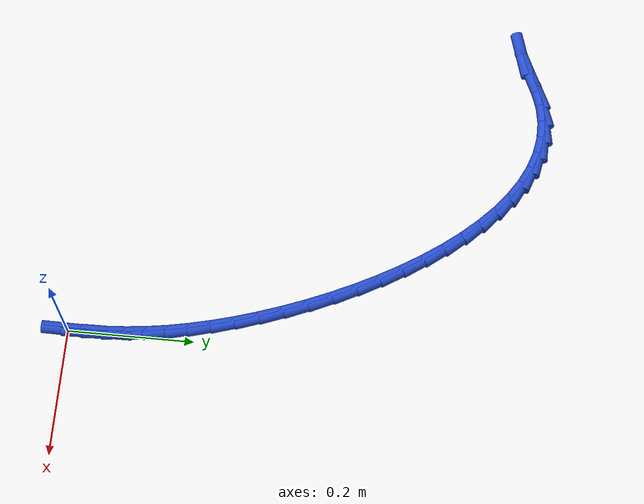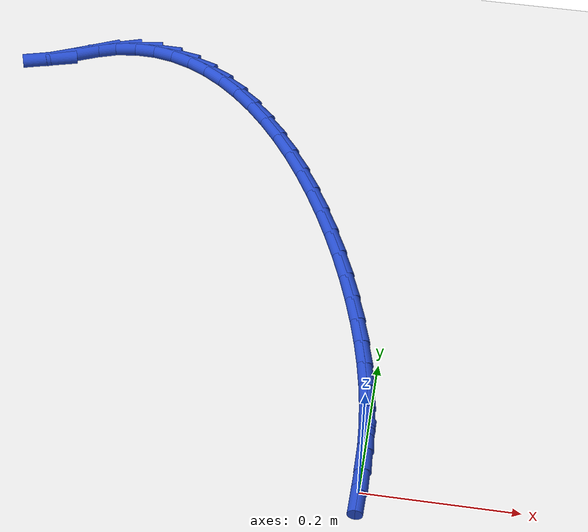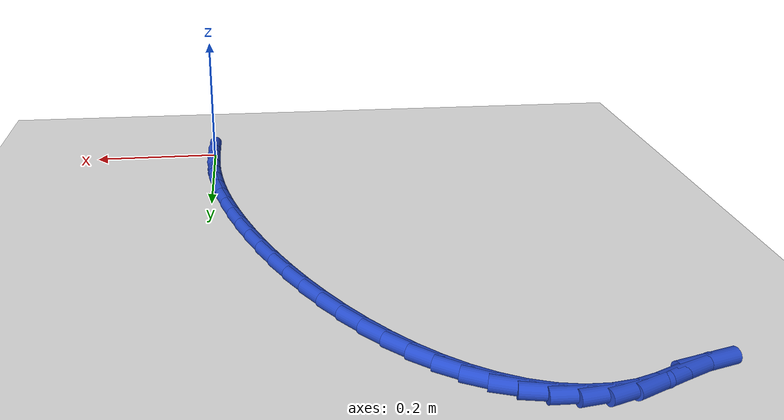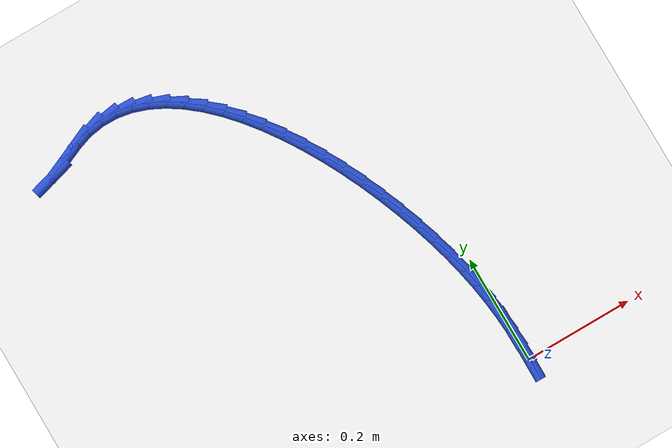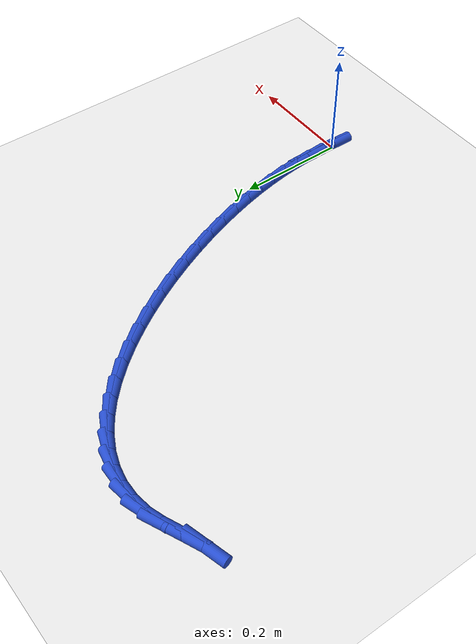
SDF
<sdf version="1.6">
 <world name="default">
  <model name="ground_plane">
   <static>1</static>
   <link name="link">
    <collision name="collision">
     <geometry><plane><normal>0 0 1</normal><size>100 100</size></plane></geometry>
     <surface><friction><ode><mu>100</mu><mu2>50</mu2></ode></friction></surface>
    </collision>
    <visual name="visual">
     <cast_shadows>0</cast_shadows>
     <geometry><plane><normal>0 0 1</normal><size>100 100</size></plane></geometry>
     <material>
      <script><uri>file://media/materials/scripts/gazebo.material</uri><name>Gazebo/WhiteGlow</name></script>
     </material>
    </visual>
   </link>
  </model>
  <model name="line">
   <link name="link_0">
    <pose>0.0 7.632783294297951e-17 0.01 0 1.57 1.5602410785087302</pose>
    <collision name="collision">
     <geometry><cylinder><radius>0.01</radius><length>0.08</length></cylinder></geometry>
    </collision>
    <visual name="visual">
     <material>
      <script><name>Gazebo/Blue</name><uri>file://media/materials/scripts/gazebo.material</uri></script>
     </material>
     <geometry><cylinder><radius>0.01</radius><length>0.08</length></cylinder></geometry>
    </visual>
   </link>
   <link name="link_1">
    <pose>0.0003309990488578508 0.031357552871455974 0.01 0 1.57 -1.5428414407994777</pose>
    <collision name="collision">
     <geometry><cylinder><radius>0.01</radius><length>0.08</length></cylinder></geometry>
    </collision>
    <visual name="visual">
     <material>
      <script><name>Gazebo/Blue</name><uri>file://media/materials/scripts/gazebo.material</uri></script>
     </material>
     <geometry><cylinder><radius>0.01</radius><length>0.08</length></cylinder></geometry>
    </visual>
   </link>
   <link name="link_2">
    <pose>-0.0005450256816263664 0.06268647767572658 0.01 0 1.57 -1.5022833746286473</pose>
    <collision name="collision">
     <geometry><cylinder><radius>0.01</radius><length>0.08</length></cylinder></geometry>
    </collision>
    <visual name="visual">
     <material>
      <script><name>Gazebo/Blue</name><uri>file://media/materials/scripts/gazebo.material</uri></script>
     </material>
     <geometry><cylinder><radius>0.01</radius><length>0.08</length></cylinder></geometry>
    </visual>
   </link>
   <link name="link_3">
    <pose>-0.00270702243128811 0.09419311693658512 0.01 0 1.57 -1.4606500215840132</pose>
    <collision name="collision">
     <geometry><cylinder><radius>0.01</radius><length>0.08</length></cylinder></geometry>
    </collision>
    <visual name="visual">
     <material>
      <script><name>Gazebo/Blue</name><uri>file://media/materials/scripts/gazebo.material</uri></script>
     </material>
     <geometry><cylinder><radius>0.01</radius><length>0.08</length></cylinder></geometry>
    </visual>
   </link>
   <link name="link_4">
    <pose>-0.006233939439962836 0.12608381317780482 0.01 0 1.57 -1.4189382596962705</pose>
    <collision name="collision">
     <geometry><cylinder><radius>0.01</radius><length>0.08</length></cylinder></geometry>
    </collision>
    <visual name="visual">
     <material>
      <script><name>Gazebo/Blue</name><uri>file://media/materials/scripts/gazebo.material</uri></script>
     </material>
     <geometry><cylinder><radius>0.01</radius><length>0.08</length></cylinder></geometry>
    </visual>
   </link>
   <link name="link_5">
    <pose>-0.011204724947485999 0.1585649089231589 0.01 0 1.57 -1.3780849845815055</pose>
    <collision name="collision">
     <geometry><cylinder><radius>0.01</radius><length>0.08</length></cylinder></geometry>
    </collision>
    <visual name="visual">
     <material>
      <script><name>Gazebo/Blue</name><uri>file://media/materials/scripts/gazebo.material</uri></script>
     </material>
     <geometry><cylinder><radius>0.01</radius><length>0.08</length></cylinder></geometry>
    </visual>
   </link>
   <link name="link_6">
    <pose>-0.01769832719369307 0.19184274669642065 0.01 0 1.57 -1.3388968363359433</pose>
    <collision name="collision">
     <geometry><cylinder><radius>0.01</radius><length>0.08</length></cylinder></geometry>
    </collision>
    <visual name="visual">
     <material>
      <script><name>Gazebo/Blue</name><uri>file://media/materials/scripts/gazebo.material</uri></script>
     </material>
     <geometry><cylinder><radius>0.01</radius><length>0.08</length></cylinder></geometry>
    </visual>
   </link>
   <link name="link_7">
    <pose>-0.025793694418419492 0.22612366902136324 0.01 0 1.57 -1.3019834450015169</pose>
    <collision name="collision">
     <geometry><cylinder><radius>0.01</radius><length>0.08</length></cylinder></geometry>
    </collision>
    <visual name="visual">
     <material>
      <script><name>Gazebo/Blue</name><uri>file://media/materials/scripts/gazebo.material</uri></script>
     </material>
     <geometry><cylinder><radius>0.01</radius><length>0.08</length></cylinder></geometry>
    </visual>
   </link>
   <link name="link_8">
    <pose>-0.035554027074187616 0.26155388031296817 0.01 0 1.57 -1.2671677220886497</pose>
    <collision name="collision">
     <geometry><cylinder><radius>0.01</radius><length>0.08</length></cylinder></geometry>
    </collision>
    <visual name="visual">
     <material>
      <script><name>Gazebo/Blue</name><uri>file://media/materials/scripts/gazebo.material</uri></script>
     </material>
     <geometry><cylinder><radius>0.01</radius><length>0.08</length></cylinder></geometry>
    </visual>
   </link>
   <link name="link_9">
    <pose>-0.04694953542879025 0.29792447136075006 0.01 0 1.57 -1.2334802067420967</pose>
    <collision name="collision">
     <geometry><cylinder><radius>0.01</radius><length>0.08</length></cylinder></geometry>
    </collision>
    <visual name="visual">
     <material>
      <script><name>Gazebo/Blue</name><uri>file://media/materials/scripts/gazebo.material</uri></script>
     </material>
     <geometry><cylinder><radius>0.01</radius><length>0.08</length></cylinder></geometry>
    </visual>
   </link>
   <link name="link_10">
    <pose>-0.05991641804499858 0.33489664806461306 0.01 0 1.57 -1.2000400107824165</pose>
    <collision name="collision">
     <geometry><cylinder><radius>0.01</radius><length>0.08</length></cylinder></geometry>
    </collision>
    <visual name="visual">
     <material>
      <script><name>Gazebo/Blue</name><uri>file://media/materials/scripts/gazebo.material</uri></script>
     </material>
     <geometry><cylinder><radius>0.01</radius><length>0.08</length></cylinder></geometry>
    </visual>
   </link>
   <link name="link_11">
    <pose>-0.07439082285938078 0.372131422991642 0.01 0 1.57 -1.1660625085651972</pose>
    <collision name="collision">
     <geometry><cylinder><radius>0.01</radius><length>0.08</length></cylinder></geometry>
    </collision>
    <visual name="visual">
     <material>
      <script><name>Gazebo/Blue</name><uri>file://media/materials/scripts/gazebo.material</uri></script>
     </material>
     <geometry><cylinder><radius>0.01</radius><length>0.08</length></cylinder></geometry>
    </visual>
   </link>
   <link name="link_12">
    <pose>-0.09030889780850501 0.4092898087089221 0.01 0 1.57 -1.1307963304815274</pose>
    <collision name="collision">
     <geometry><cylinder><radius>0.01</radius><length>0.08</length></cylinder></geometry>
    </collision>
    <visual name="visual">
     <material>
      <script><name>Gazebo/Blue</name><uri>file://media/materials/scripts/gazebo.material</uri></script>
     </material>
     <geometry><cylinder><radius>0.01</radius><length>0.08</length></cylinder></geometry>
    </visual>
   </link>
   <link name="link_13">
    <pose>-0.10760679082893934 0.44603281778353854 0.01 0 1.57 -1.0934719313543426</pose>
    <collision name="collision">
     <geometry><cylinder><radius>0.01</radius><length>0.08</length></cylinder></geometry>
    </collision>
    <visual name="visual">
     <material>
      <script><name>Gazebo/Blue</name><uri>file://media/materials/scripts/gazebo.material</uri></script>
     </material>
     <geometry><cylinder><radius>0.01</radius><length>0.08</length></cylinder></geometry>
    </visual>
   </link>
   <link name="link_14">
    <pose>-0.12622064985725204 0.4820214627825767 0.01 0 1.57 -1.053254516101011</pose>
    <collision name="collision">
     <geometry><cylinder><radius>0.01</radius><length>0.08</length></cylinder></geometry>
    </collision>
    <visual name="visual">
     <material>
      <script><name>Gazebo/Blue</name><uri>file://media/materials/scripts/gazebo.material</uri></script>
     </material>
     <geometry><cylinder><radius>0.01</radius><length>0.08</length></cylinder></geometry>
    </visual>
   </link>
   <link name="link_15">
    <pose>-0.14608662283001117 0.5169167562731214 0.01 0 1.57 -1.009196533418702</pose>
    <collision name="collision">
     <geometry><cylinder><radius>0.01</radius><length>0.08</length></cylinder></geometry>
    </collision>
    <visual name="visual">
     <material>
      <script><name>Gazebo/Blue</name><uri>file://media/materials/scripts/gazebo.material</uri></script>
     </material>
     <geometry><cylinder><radius>0.01</radius><length>0.08</length></cylinder></geometry>
    </visual>
   </link>
   <link name="link_16">
    <pose>-0.16714085768378495 0.5503797108222581 0.01 0 1.57 -0.9601867418515324</pose>
    <collision name="collision">
     <geometry><cylinder><radius>0.01</radius><length>0.08</length></cylinder></geometry>
    </collision>
    <visual name="visual">
     <material>
      <script><name>Gazebo/Blue</name><uri>file://media/materials/scripts/gazebo.material</uri></script>
     </material>
     <geometry><cylinder><radius>0.01</radius><length>0.08</length></cylinder></geometry>
    </visual>
   </link>
   <link name="link_17">
    <pose>-0.18931950235514144 0.582071338997072 0.01 0 1.57 -0.9048952084887715</pose>
    <collision name="collision">
     <geometry><cylinder><radius>0.01</radius><length>0.08</length></cylinder></geometry>
    </collision>
    <visual name="visual">
     <material>
      <script><name>Gazebo/Blue</name><uri>file://media/materials/scripts/gazebo.material</uri></script>
     </material>
     <geometry><cylinder><radius>0.01</radius><length>0.08</length></cylinder></geometry>
    </visual>
   </link>
   <link name="link_18">
    <pose>-0.21255870478064887 0.6116526533646479 0.01 0 1.57 -0.8417181817801344</pose>
    <collision name="collision">
     <geometry><cylinder><radius>0.01</radius><length>0.08</length></cylinder></geometry>
    </collision>
    <visual name="visual">
     <material>
      <script><name>Gazebo/Blue</name><uri>file://media/materials/scripts/gazebo.material</uri></script>
     </material>
     <geometry><cylinder><radius>0.01</radius><length>0.08</length></cylinder></geometry>
    </visual>
   </link>
   <link name="link_19">
    <pose>-0.23679461289687537 0.6387846664920713 0.01 0 1.57 -0.7687364886461396</pose>
    <collision name="collision">
     <geometry><cylinder><radius>0.01</radius><length>0.08</length></cylinder></geometry>
    </collision>
    <visual name="visual">
     <material>
      <script><name>Gazebo/Blue</name><uri>file://media/materials/scripts/gazebo.material</uri></script>
     </material>
     <geometry><cylinder><radius>0.01</radius><length>0.08</length></cylinder></geometry>
    </visual>
   </link>
   <link name="link_20">
    <pose>-0.26196337464038905 0.6631283909464273 0.01 0 1.57 -0.6837206920881425</pose>
    <collision name="collision">
     <geometry><cylinder><radius>0.01</radius><length>0.08</length></cylinder></geometry>
    </collision>
    <visual name="visual">
     <material>
      <script><name>Gazebo/Blue</name><uri>file://media/materials/scripts/gazebo.material</uri></script>
     </material>
     <geometry><cylinder><radius>0.01</radius><length>0.08</length></cylinder></geometry>
    </visual>
   </link>
   <link name="link_21">
    <pose>-0.2880011379477582 0.6843448392948013 0.01 0 1.57 -0.584251224668055</pose>
    <collision name="collision">
     <geometry><cylinder><radius>0.01</radius><length>0.08</length></cylinder></geometry>
    </collision>
    <visual name="visual">
     <material>
      <script><name>Gazebo/Blue</name><uri>file://media/materials/scripts/gazebo.material</uri></script>
     </material>
     <geometry><cylinder><radius>0.01</radius><length>0.08</length></cylinder></geometry>
    </visual>
   </link>
   <link name="link_22">
    <pose>-0.3148440507555509 0.702095024104278 0.01 0 1.57 -0.46807013256029634</pose>
    <collision name="collision">
     <geometry><cylinder><radius>0.01</radius><length>0.08</length></cylinder></geometry>
    </collision>
    <visual name="visual">
     <material>
      <script><name>Gazebo/Blue</name><uri>file://media/materials/scripts/gazebo.material</uri></script>
     </material>
     <geometry><cylinder><radius>0.01</radius><length>0.08</length></cylinder></geometry>
    </visual>
   </link>
   <link name="link_23">
    <pose>-0.3424282610003351 0.716039957941943 0.01 0 1.57 -0.33380709018294313</pose>
    <collision name="collision">
     <geometry><cylinder><radius>0.01</radius><length>0.08</length></cylinder></geometry>
    </collision>
    <visual name="visual">
     <material>
      <script><name>Gazebo/Blue</name><uri>file://media/materials/scripts/gazebo.material</uri></script>
     </material>
     <geometry><cylinder><radius>0.01</radius><length>0.08</length></cylinder></geometry>
    </visual>
   </link>
   <link name="link_24">
    <pose>-0.3706899166186793 0.7258406533748811 0.01 0 1.57 -0.1821128685247869</pose>
    <collision name="collision">
     <geometry><cylinder><radius>0.01</radius><length>0.08</length></cylinder></geometry>
    </collision>
    <visual name="visual">
     <material>
      <script><name>Gazebo/Blue</name><uri>file://media/materials/scripts/gazebo.material</uri></script>
     </material>
     <geometry><cylinder><radius>0.01</radius><length>0.08</length></cylinder></geometry>
    </visual>
   </link>
   <link name="link_25">
    <pose>-0.3995651655471514 0.7311581229701778 0.01 0 1.57 -0.016829557566478415</pose>
    <collision name="collision">
     <geometry><cylinder><radius>0.01</radius><length>0.08</length></cylinder></geometry>
    </collision>
    <visual name="visual">
     <material>
      <script><name>Gazebo/Blue</name><uri>file://media/materials/scripts/gazebo.material</uri></script>
     </material>
     <geometry><cylinder><radius>0.01</radius><length>0.08</length></cylinder></geometry>
    </visual>
   </link>
   <link name="link_26">
    <pose>-0.4289901557223196 0.731653379294918 0.01 0 1.57 0.15474770349344974</pose>
    <collision name="collision">
     <geometry><cylinder><radius>0.01</radius><length>0.08</length></cylinder></geometry>
    </collision>
    <visual name="visual">
     <material>
      <script><name>Gazebo/Blue</name><uri>file://media/materials/scripts/gazebo.material</uri></script>
     </material>
     <geometry><cylinder><radius>0.01</radius><length>0.08</length></cylinder></geometry>
    </visual>
   </link>
   <link name="link_27">
    <pose>-0.4589010350807521 0.7269874349161871 0.01 0 1.57 0.3215064868909488</pose>
    <collision name="collision">
     <geometry><cylinder><radius>0.01</radius><length>0.08</length></cylinder></geometry>
    </collision>
    <visual name="visual">
     <material>
      <script><name>Gazebo/Blue</name><uri>file://media/materials/scripts/gazebo.material</uri></script>
     </material>
     <geometry><cylinder><radius>0.01</radius><length>0.08</length></cylinder></geometry>
    </visual>
   </link>
   <link name="link_28">
    <pose>-0.489231217882669 0.7168855984377859 0.01 0 1.57 0.4230516009280961</pose>
    <collision name="collision">
     <geometry><cylinder><radius>0.01</radius><length>0.08</length></cylinder></geometry>
    </collision>
    <visual name="visual">
     <material>
      <script><name>Gazebo/Blue</name><uri>file://media/materials/scripts/gazebo.material</uri></script>
     </material>
     <geometry><cylinder><radius>0.01</radius><length>0.08</length></cylinder></geometry>
    </visual>
   </link>
   <link name="link_29">
    <pose>-0.519827519245681 0.7031099893159112 0.01 0 1.57 0.40942129871275734</pose>
    <collision name="collision">
     <geometry><cylinder><radius>0.01</radius><length>0.08</length></cylinder></geometry>
    </collision>
    <visual name="visual">
     <material>
      <script><name>Gazebo/Blue</name><uri>file://media/materials/scripts/gazebo.material</uri></script>
     </material>
     <geometry><cylinder><radius>0.01</radius><length>0.08</length></cylinder></geometry>
    </visual>
   </link>
   <link name="link_30">
    <pose>-0.5504344763212026 0.6898283036121865 0.01 0 1.57 0.27244731959582164</pose>
    <collision name="collision">
     <geometry><cylinder><radius>0.01</radius><length>0.08</length></cylinder></geometry>
    </collision>
    <visual name="visual">
     <material>
      <script><name>Gazebo/Blue</name><uri>file://media/materials/scripts/gazebo.material</uri></script>
     </material>
     <geometry><cylinder><radius>0.01</radius><length>0.08</length></cylinder></geometry>
    </visual>
   </link>
   <link name="link_270">
    <pose>-1.214306433183765e-17 6.938893903907228e-18 0.01 0 1.57 1.5605309056339107</pose>
    <collision name="collision">
     <geometry><cylinder><radius>0.01</radius><length>0.08</length></cylinder></geometry>
    </collision>
    <visual name="visual">
     <material>
      <script><name>Gazebo/Blue</name><uri>file://media/materials/scripts/gazebo.material</uri></script>
     </material>
     <geometry><cylinder><radius>0.01</radius><length>0.08</length></cylinder></geometry>
    </visual>
   </link>
   <link name="link_271">
    <pose>0.00032157141737494156 0.03132459123125543 0.01 0 1.57 -1.5405138543985315</pose>
    <collision name="collision">
     <geometry><cylinder><radius>0.01</radius><length>0.08</length></cylinder></geometry>
    </collision>
    <visual name="visual">
     <material>
      <script><name>Gazebo/Blue</name><uri>file://media/materials/scripts/gazebo.material</uri></script>
     </material>
     <geometry><cylinder><radius>0.01</radius><length>0.08</length></cylinder></geometry>
    </visual>
   </link>
   <link name="link_272">
    <pose>-0.00062044673348958 0.06242278455411957 0.01 0 1.57 -1.5608572267152878</pose>
    <collision name="collision">
     <geometry><cylinder><radius>0.01</radius><length>0.08</length></cylinder></geometry>
    </collision>
    <visual name="visual">
     <material>
      <script><name>Gazebo/Blue</name><uri>file://media/materials/scripts/gazebo.material</uri></script>
     </material>
     <geometry><cylinder><radius>0.01</radius><length>0.08</length></cylinder></geometry>
    </visual>
   </link>
  </model>
 </world>
</sdf>
